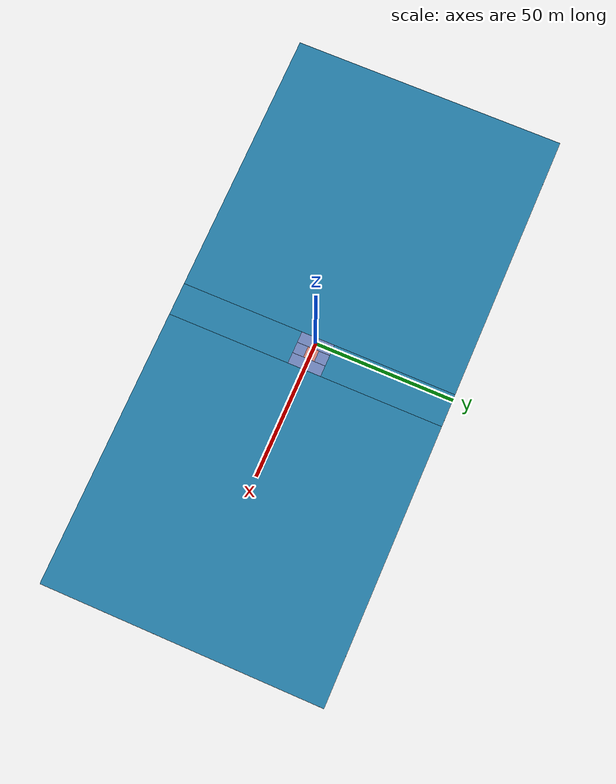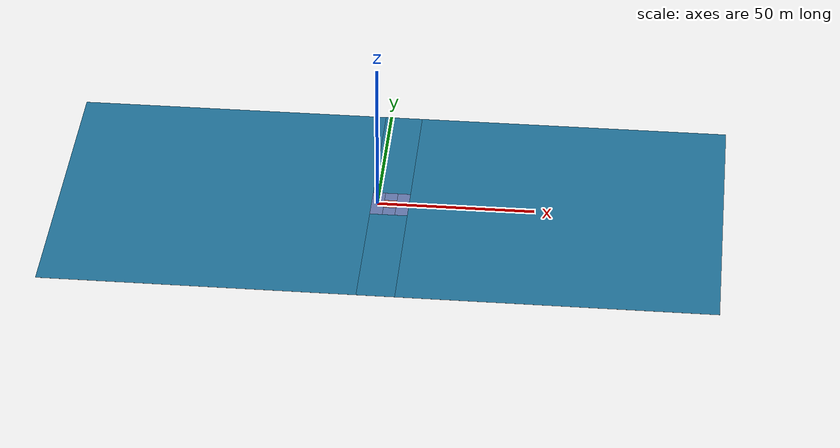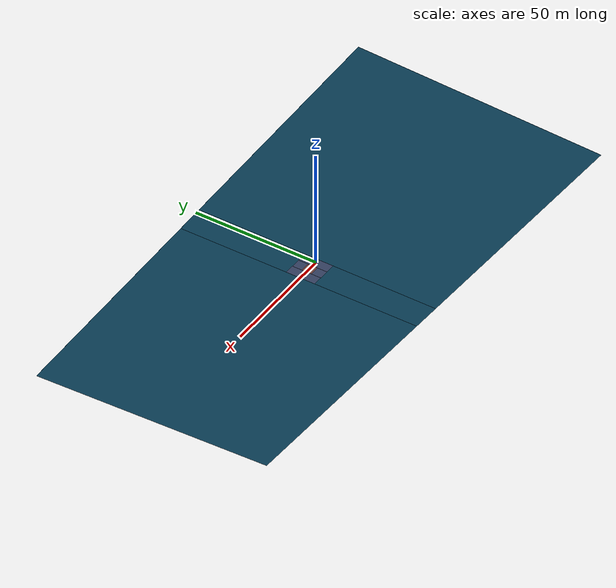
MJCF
<mujoco model="friction_floor_midpatch">
  <compiler angle="radian" />
  <asset>
    <texture name='a' builtin="gradient" height="100" rgb1="1 1 1" rgb2="0 0 0" type="skybox" width="100"/>
    <texture name="texplane0" type="2d" builtin="checker" rgb1="0.0 0.0 0.36" rgb2="0.79 .94 .99" width="100" height="100" mark="cross" markrgb=".8 .8 .8"/>
    <texture name="texplane1" type="2d" builtin="checker" rgb1=".52 .08 0" rgb2="1 .85 .84" width="100" height="100" mark="cross" markrgb=".8 .8 .8"/>
    <texture name="texplane2" type="2d" builtin="checker" rgb1="0.0 0.0 0.36" rgb2="0.79 .94 .99" width="100" height="100" mark="cross" markrgb=".8 .8 .8"/>
    <texture name="texplane3" type="2d" builtin="checker" rgb1="0 0 0" rgb2="0.8 0.0 0.8" width="100" height="100" mark="cross" markrgb=".8 .8 .8"/>
    <texture name="texplane4" type="2d" builtin="flat" rgb1="0.1215686275 0.4470588235 0.6" width="100" height="100"/>
    <material name="matplane0" reflectance="0.2" texture="texplane0" texrepeat="1 1" texuniform="true"/>
    <material name="matplane1" reflectance="0.2" texture="texplane1" texrepeat="1 1" texuniform="true"/>
    <material name="matplane2" reflectance="0.2" texture="texplane2" texrepeat="1 1" texuniform="true"/>
    <material name="matplane3" reflectance="0.2" texture="texplane3" texrepeat="1 1" texuniform="true"/>
    <material name="matplane4" reflectance="0.2" texture="texplane4" texrepeat="1 1" texuniform="true"/>
  </asset>
  <visual>
    <headlight ambient="0.6 0.6 0.6" diffuse="0.5 0.5 0.5" specular="0.2 0.2 0.2"/>
    <map znear="0.001" />
  </visual>
  <worldbody>
    <!-- Floor XY -->
    <geom contype="1" friction="1 0.0 0.001" name="floor00" pos="0 0 0" euler="0 0 0" size="2 6 0.01" type="box" material="matplane0" condim="6"/>
    <geom contype="1" friction="1 0.0 0.010" name="floor01" pos="4 0 0" euler="0 0 0" size="2 2 0.01" type="box" material="matplane1" condim="6"/>
    <geom contype="1" friction="1 0.0 0.001" name="floor02" pos="4 4 0" euler="0 0 0" size="2 2 0.01" type="box" material="matplane0" condim="6"/>
    <geom contype="1" friction="1 0.0 0.001" name="floor03" pos="4 -4 0" euler="0 0 0" size="2 2 0.01" type="box" material="matplane0" condim="6"/>
    <geom contype="1" friction="1 0.0 0.001" name="floor04" pos="8 0 0" euler="0 0 0" size="2 6 0.01" type="box" material="matplane0" condim="6"/>
    <geom contype="1" friction="1 0.0 0.001" name="floor05" pos="60 0 0" euler="0 0 0" size="50 50 0.01" type="box" material="matplane4" condim="6"/>
    <geom contype="1" friction="1 0.0 0.001" name="floor06" pos="-52 0 0" euler="0 0 0" size="50 50 0.01" type="box" material="matplane4" condim="6"/>
    <geom contype="1" friction="1 0.0 0.001" name="floor07" pos="4 28 0" euler="0 0 0" size="6 22 0.01" type="box" material="matplane4" condim="6"/>
    <geom contype="1" friction="1 0.0 0.001" name="floor08" pos="4 -28 0" euler="0 0 0" size="6 22 0.01" type="box" material="matplane4" condim="6"/>

  </worldbody>
</mujoco>
